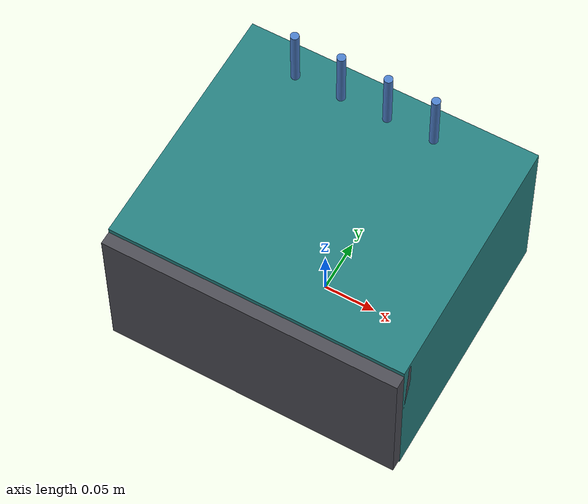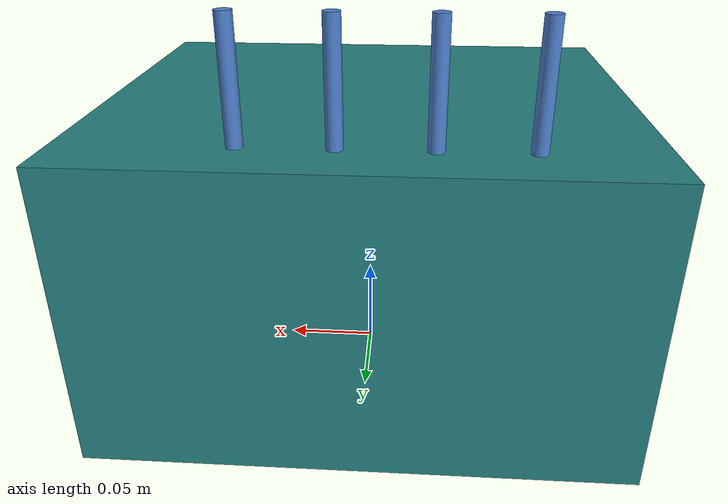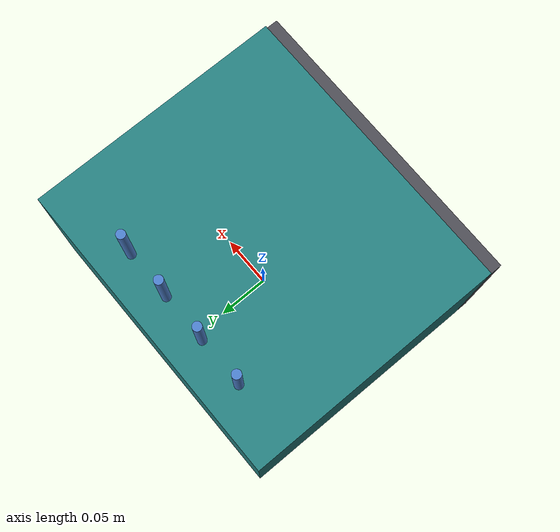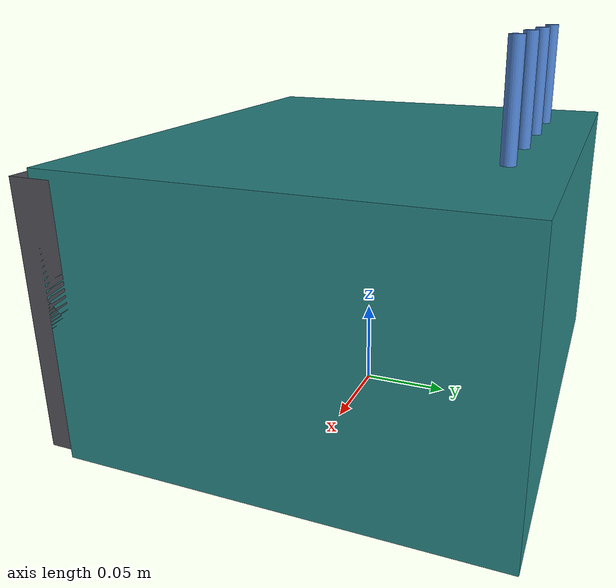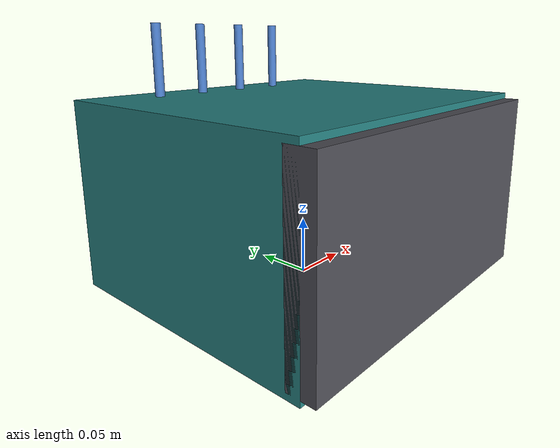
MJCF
<?xml version="1.0" encoding="utf-8"?>
<mujoco model="real_lab_mcmaster_university_sequencer">
  <compiler angle="radian" autolimits="true"/>
  <default>
    <default class="body"><geom contype="1" conaffinity="1"/></default>
  </default>
  <worldbody>
    <body name="base">
      <geom type="box" size="0.14 0.12 0.08" pos="0 0 0.08" rgba="0.15 0.5 0.5 1" class="body"/>
      <geom type="cylinder" size="0.004 0.07" pos="-0.08 0.09 0.15" rgba="0.3 0.5 0.8 1" class="body"/>
      <geom type="cylinder" size="0.004 0.07" pos="-0.035 0.09 0.15" rgba="0.3 0.5 0.8 1" class="body"/>
      <geom type="cylinder" size="0.004 0.07" pos="0.009999999999999995 0.09 0.15" rgba="0.3 0.5 0.8 1" class="body"/>
      <geom type="cylinder" size="0.004 0.07" pos="0.05500000000000001 0.09 0.15" rgba="0.3 0.5 0.8 1" class="body"/>
      <body name="capillary_door" pos="0.0 -0.12 0.08">
        <joint name="capillary_door_joint" type="hinge" axis="0 1 0" range="0 1.4" damping="0.7" frictionloss="0.3"/>
  <geom type="box" size="0.14 0.012 0.075" pos="0 0 0" rgba="0.3 0.3 0.33 1" class="body"/>
      </body>
    </body>
  </worldbody>
</mujoco>
